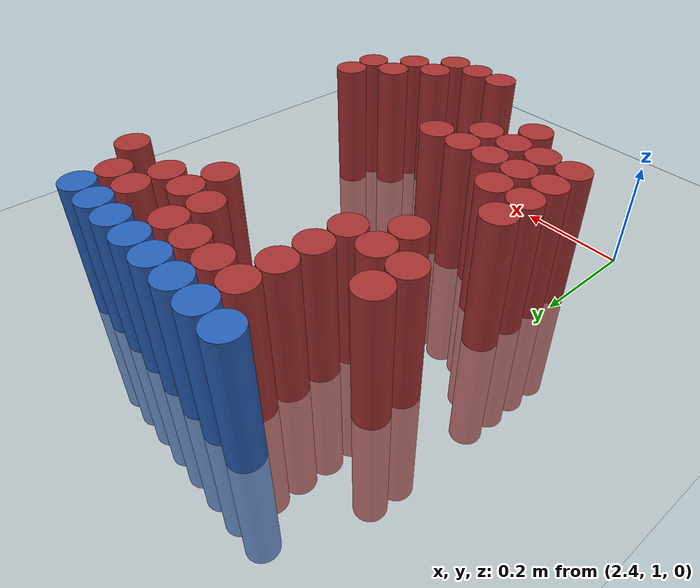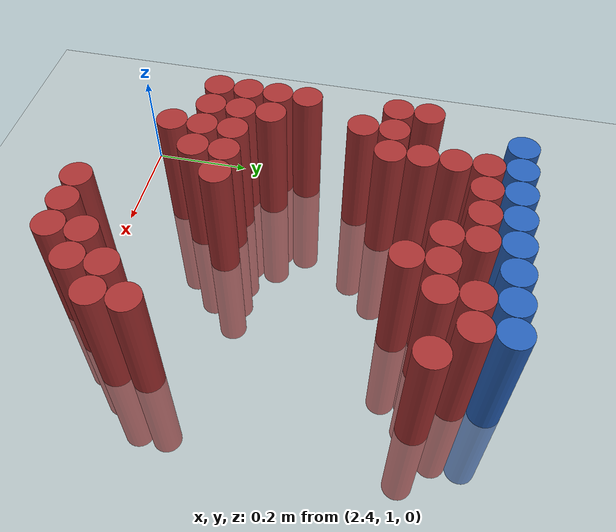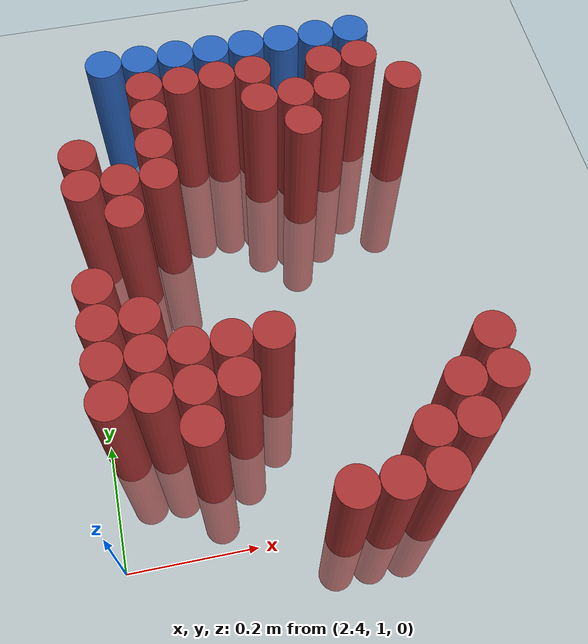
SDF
<sdf version="1.6">
 <world name="default">
  <model name="ground_plane">
   <static>1</static>
   <link name="link">
    <collision name="collision">
     <geometry><plane><normal>0 0 1</normal><size>100 100</size></plane></geometry>
     <surface><friction><ode><mu>100</mu><mu2>50</mu2></ode></friction></surface>
    </collision>
    <visual name="visual">
     <cast_shadows>0</cast_shadows>
     <geometry><plane><normal>0 0 1</normal><size>100 100</size></plane></geometry>
     <material>
      <script><uri>file://media/materials/scripts/gazebo.material</uri><name>Gazebo/Grey</name></script>
     </material>
    </visual>
   </link>
  </model>
  <model name="unit_cylinder_102">
   <static>1</static>
   <pose>2.490000 1.770000 0.000000 0.000000 0.000000 0.000000</pose>
   <link name="link">
    <inertial>
     <mass>1</mass>
     <inertia><ixx>0.145833</ixx><ixy>0</ixy><ixz>0</ixz><iyy>0.145833</iyy><iyz>0</iyz><izz>0.125</izz></inertia>
    </inertial>
    <collision name="collision">
     <geometry><cylinder><radius>0.030000</radius><length>0.5</length></cylinder></geometry>
    </collision>
    <visual name="visual">
     <geometry><cylinder><radius>0.030000</radius><length>0.5</length></cylinder></geometry>
     <material>
      <ambient>0.152000 0.379000 0.720000 1</ambient>
      <diffuse>0.152000 0.379000 0.720000 1</diffuse>
     </material>
     <material>
      <script><name>Gazebo/Grey</name><uri>file://media/materials/scripts/gazebo.material</uri></script>
     </material>
    </visual>
   </link>
  </model>
  <model name="unit_cylinder_103">
   <static>1</static>
   <pose>2.550000 1.770000 0.000000 0.000000 0.000000 0.000000</pose>
   <link name="link">
    <inertial>
     <mass>1</mass>
     <inertia><ixx>0.145833</ixx><ixy>0</ixy><ixz>0</ixz><iyy>0.145833</iyy><iyz>0</iyz><izz>0.125</izz></inertia>
    </inertial>
    <collision name="collision">
     <geometry><cylinder><radius>0.030000</radius><length>0.5</length></cylinder></geometry>
    </collision>
    <visual name="visual">
     <geometry><cylinder><radius>0.030000</radius><length>0.5</length></cylinder></geometry>
     <material>
      <ambient>0.152000 0.379000 0.720000 1</ambient>
      <diffuse>0.152000 0.379000 0.720000 1</diffuse>
     </material>
     <material>
      <script><name>Gazebo/Grey</name><uri>file://media/materials/scripts/gazebo.material</uri></script>
     </material>
    </visual>
   </link>
  </model>
  <model name="unit_cylinder_104">
   <static>1</static>
   <pose>2.610000 1.770000 0.000000 0.000000 0.000000 0.000000</pose>
   <link name="link">
    <inertial>
     <mass>1</mass>
     <inertia><ixx>0.145833</ixx><ixy>0</ixy><ixz>0</ixz><iyy>0.145833</iyy><iyz>0</iyz><izz>0.125</izz></inertia>
    </inertial>
    <collision name="collision">
     <geometry><cylinder><radius>0.030000</radius><length>0.5</length></cylinder></geometry>
    </collision>
    <visual name="visual">
     <geometry><cylinder><radius>0.030000</radius><length>0.5</length></cylinder></geometry>
     <material>
      <ambient>0.152000 0.379000 0.720000 1</ambient>
      <diffuse>0.152000 0.379000 0.720000 1</diffuse>
     </material>
     <material>
      <script><name>Gazebo/Grey</name><uri>file://media/materials/scripts/gazebo.material</uri></script>
     </material>
    </visual>
   </link>
  </model>
  <model name="unit_cylinder_105">
   <static>1</static>
   <pose>2.670000 1.770000 0.000000 0.000000 0.000000 0.000000</pose>
   <link name="link">
    <inertial>
     <mass>1</mass>
     <inertia><ixx>0.145833</ixx><ixy>0</ixy><ixz>0</ixz><iyy>0.145833</iyy><iyz>0</iyz><izz>0.125</izz></inertia>
    </inertial>
    <collision name="collision">
     <geometry><cylinder><radius>0.030000</radius><length>0.5</length></cylinder></geometry>
    </collision>
    <visual name="visual">
     <geometry><cylinder><radius>0.030000</radius><length>0.5</length></cylinder></geometry>
     <material>
      <ambient>0.152000 0.379000 0.720000 1</ambient>
      <diffuse>0.152000 0.379000 0.720000 1</diffuse>
     </material>
     <material>
      <script><name>Gazebo/Grey</name><uri>file://media/materials/scripts/gazebo.material</uri></script>
     </material>
    </visual>
   </link>
  </model>
  <model name="unit_cylinder_106">
   <static>1</static>
   <pose>2.730000 1.770000 0.000000 0.000000 0.000000 0.000000</pose>
   <link name="link">
    <inertial>
     <mass>1</mass>
     <inertia><ixx>0.145833</ixx><ixy>0</ixy><ixz>0</ixz><iyy>0.145833</iyy><iyz>0</iyz><izz>0.125</izz></inertia>
    </inertial>
    <collision name="collision">
     <geometry><cylinder><radius>0.030000</radius><length>0.5</length></cylinder></geometry>
    </collision>
    <visual name="visual">
     <geometry><cylinder><radius>0.030000</radius><length>0.5</length></cylinder></geometry>
     <material>
      <ambient>0.152000 0.379000 0.720000 1</ambient>
      <diffuse>0.152000 0.379000 0.720000 1</diffuse>
     </material>
     <material>
      <script><name>Gazebo/Grey</name><uri>file://media/materials/scripts/gazebo.material</uri></script>
     </material>
    </visual>
   </link>
  </model>
  <model name="unit_cylinder_107">
   <static>1</static>
   <pose>2.790000 1.770000 0.000000 0.000000 0.000000 0.000000</pose>
   <link name="link">
    <inertial>
     <mass>1</mass>
     <inertia><ixx>0.145833</ixx><ixy>0</ixy><ixz>0</ixz><iyy>0.145833</iyy><iyz>0</iyz><izz>0.125</izz></inertia>
    </inertial>
    <collision name="collision">
     <geometry><cylinder><radius>0.030000</radius><length>0.5</length></cylinder></geometry>
    </collision>
    <visual name="visual">
     <geometry><cylinder><radius>0.030000</radius><length>0.5</length></cylinder></geometry>
     <material>
      <ambient>0.152000 0.379000 0.720000 1</ambient>
      <diffuse>0.152000 0.379000 0.720000 1</diffuse>
     </material>
     <material>
      <script><name>Gazebo/Grey</name><uri>file://media/materials/scripts/gazebo.material</uri></script>
     </material>
    </visual>
   </link>
  </model>
  <model name="unit_cylinder_108">
   <static>1</static>
   <pose>2.850000 1.770000 0.000000 0.000000 0.000000 0.000000</pose>
   <link name="link">
    <inertial>
     <mass>1</mass>
     <inertia><ixx>0.145833</ixx><ixy>0</ixy><ixz>0</ixz><iyy>0.145833</iyy><iyz>0</iyz><izz>0.125</izz></inertia>
    </inertial>
    <collision name="collision">
     <geometry><cylinder><radius>0.030000</radius><length>0.5</length></cylinder></geometry>
    </collision>
    <visual name="visual">
     <geometry><cylinder><radius>0.030000</radius><length>0.5</length></cylinder></geometry>
     <material>
      <ambient>0.152000 0.379000 0.720000 1</ambient>
      <diffuse>0.152000 0.379000 0.720000 1</diffuse>
     </material>
     <material>
      <script><name>Gazebo/Grey</name><uri>file://media/materials/scripts/gazebo.material</uri></script>
     </material>
    </visual>
   </link>
  </model>
  <model name="unit_cylinder_109">
   <static>1</static>
   <pose>2.910000 1.770000 0.000000 0.000000 0.000000 0.000000</pose>
   <link name="link">
    <inertial>
     <mass>1</mass>
     <inertia><ixx>0.145833</ixx><ixy>0</ixy><ixz>0</ixz><iyy>0.145833</iyy><iyz>0</iyz><izz>0.125</izz></inertia>
    </inertial>
    <collision name="collision">
     <geometry><cylinder><radius>0.030000</radius><length>0.5</length></cylinder></geometry>
    </collision>
    <visual name="visual">
     <geometry><cylinder><radius>0.030000</radius><length>0.5</length></cylinder></geometry>
     <material>
      <ambient>0.152000 0.379000 0.720000 1</ambient>
      <diffuse>0.152000 0.379000 0.720000 1</diffuse>
     </material>
     <material>
      <script><name>Gazebo/Grey</name><uri>file://media/materials/scripts/gazebo.material</uri></script>
     </material>
    </visual>
   </link>
  </model>
  <model name="unit_cylinder_126">
   <static>1</static>
   <pose>2.550000 1.710000 0.000000 0.000000 0.000000 0.000000</pose>
   <link name="link">
    <inertial>
     <mass>1</mass>
     <inertia><ixx>0.145833</ixx><ixy>0</ixy><ixz>0</ixz><iyy>0.145833</iyy><iyz>0</iyz><izz>0.125</izz></inertia>
    </inertial>
    <collision name="collision">
     <geometry><cylinder><radius>0.030000</radius><length>0.5</length></cylinder></geometry>
    </collision>
    <visual name="visual">
     <geometry><cylinder><radius>0.030000</radius><length>0.5</length></cylinder></geometry>
     <material>
      <ambient>0.648000 0.192000 0.192000 1</ambient>
      <diffuse>0.648000 0.192000 0.192000 1</diffuse>
     </material>
     <material>
      <script><name>Gazebo/Grey</name><uri>file://media/materials/scripts/gazebo.material</uri></script>
     </material>
    </visual>
   </link>
  </model>
  <model name="unit_cylinder_127">
   <static>1</static>
   <pose>2.610000 1.710000 0.000000 0.000000 0.000000 0.000000</pose>
   <link name="link">
    <inertial>
     <mass>1</mass>
     <inertia><ixx>0.145833</ixx><ixy>0</ixy><ixz>0</ixz><iyy>0.145833</iyy><iyz>0</iyz><izz>0.125</izz></inertia>
    </inertial>
    <collision name="collision">
     <geometry><cylinder><radius>0.030000</radius><length>0.5</length></cylinder></geometry>
    </collision>
    <visual name="visual">
     <geometry><cylinder><radius>0.030000</radius><length>0.5</length></cylinder></geometry>
     <material>
      <ambient>0.648000 0.192000 0.192000 1</ambient>
      <diffuse>0.648000 0.192000 0.192000 1</diffuse>
     </material>
     <material>
      <script><name>Gazebo/Grey</name><uri>file://media/materials/scripts/gazebo.material</uri></script>
     </material>
    </visual>
   </link>
  </model>
  <model name="unit_cylinder_128">
   <static>1</static>
   <pose>2.670000 1.710000 0.000000 0.000000 0.000000 0.000000</pose>
   <link name="link">
    <inertial>
     <mass>1</mass>
     <inertia><ixx>0.145833</ixx><ixy>0</ixy><ixz>0</ixz><iyy>0.145833</iyy><iyz>0</iyz><izz>0.125</izz></inertia>
    </inertial>
    <collision name="collision">
     <geometry><cylinder><radius>0.030000</radius><length>0.5</length></cylinder></geometry>
    </collision>
    <visual name="visual">
     <geometry><cylinder><radius>0.030000</radius><length>0.5</length></cylinder></geometry>
     <material>
      <ambient>0.648000 0.192000 0.192000 1</ambient>
      <diffuse>0.648000 0.192000 0.192000 1</diffuse>
     </material>
     <material>
      <script><name>Gazebo/Grey</name><uri>file://media/materials/scripts/gazebo.material</uri></script>
     </material>
    </visual>
   </link>
  </model>
  <model name="unit_cylinder_129">
   <static>1</static>
   <pose>2.730000 1.710000 0.000000 0.000000 0.000000 0.000000</pose>
   <link name="link">
    <inertial>
     <mass>1</mass>
     <inertia><ixx>0.145833</ixx><ixy>0</ixy><ixz>0</ixz><iyy>0.145833</iyy><iyz>0</iyz><izz>0.125</izz></inertia>
    </inertial>
    <collision name="collision">
     <geometry><cylinder><radius>0.030000</radius><length>0.5</length></cylinder></geometry>
    </collision>
    <visual name="visual">
     <geometry><cylinder><radius>0.030000</radius><length>0.5</length></cylinder></geometry>
     <material>
      <ambient>0.648000 0.192000 0.192000 1</ambient>
      <diffuse>0.648000 0.192000 0.192000 1</diffuse>
     </material>
     <material>
      <script><name>Gazebo/Grey</name><uri>file://media/materials/scripts/gazebo.material</uri></script>
     </material>
    </visual>
   </link>
  </model>
  <model name="unit_cylinder_130">
   <static>1</static>
   <pose>2.850000 1.710000 0.000000 0.000000 0.000000 0.000000</pose>
   <link name="link">
    <inertial>
     <mass>1</mass>
     <inertia><ixx>0.145833</ixx><ixy>0</ixy><ixz>0</ixz><iyy>0.145833</iyy><iyz>0</iyz><izz>0.125</izz></inertia>
    </inertial>
    <collision name="collision">
     <geometry><cylinder><radius>0.030000</radius><length>0.5</length></cylinder></geometry>
    </collision>
    <visual name="visual">
     <geometry><cylinder><radius>0.030000</radius><length>0.5</length></cylinder></geometry>
     <material>
      <ambient>0.648000 0.192000 0.192000 1</ambient>
      <diffuse>0.648000 0.192000 0.192000 1</diffuse>
     </material>
     <material>
      <script><name>Gazebo/Grey</name><uri>file://media/materials/scripts/gazebo.material</uri></script>
     </material>
    </visual>
   </link>
  </model>
  <model name="unit_cylinder_131">
   <static>1</static>
   <pose>2.910000 1.710000 0.000000 0.000000 0.000000 0.000000</pose>
   <link name="link">
    <inertial>
     <mass>1</mass>
     <inertia><ixx>0.145833</ixx><ixy>0</ixy><ixz>0</ixz><iyy>0.145833</iyy><iyz>0</iyz><izz>0.125</izz></inertia>
    </inertial>
    <collision name="collision">
     <geometry><cylinder><radius>0.030000</radius><length>0.5</length></cylinder></geometry>
    </collision>
    <visual name="visual">
     <geometry><cylinder><radius>0.030000</radius><length>0.5</length></cylinder></geometry>
     <material>
      <ambient>0.648000 0.192000 0.192000 1</ambient>
      <diffuse>0.648000 0.192000 0.192000 1</diffuse>
     </material>
     <material>
      <script><name>Gazebo/Grey</name><uri>file://media/materials/scripts/gazebo.material</uri></script>
     </material>
    </visual>
   </link>
  </model>
  <model name="unit_cylinder_148">
   <static>1</static>
   <pose>2.550000 1.650000 0.000000 0.000000 0.000000 0.000000</pose>
   <link name="link">
    <inertial>
     <mass>1</mass>
     <inertia><ixx>0.145833</ixx><ixy>0</ixy><ixz>0</ixz><iyy>0.145833</iyy><iyz>0</iyz><izz>0.125</izz></inertia>
    </inertial>
    <collision name="collision">
     <geometry><cylinder><radius>0.030000</radius><length>0.5</length></cylinder></geometry>
    </collision>
    <visual name="visual">
     <geometry><cylinder><radius>0.030000</radius><length>0.5</length></cylinder></geometry>
     <material>
      <ambient>0.648000 0.192000 0.192000 1</ambient>
      <diffuse>0.648000 0.192000 0.192000 1</diffuse>
     </material>
     <material>
      <script><name>Gazebo/Grey</name><uri>file://media/materials/scripts/gazebo.material</uri></script>
     </material>
    </visual>
   </link>
  </model>
  <model name="unit_cylinder_149">
   <static>1</static>
   <pose>2.730000 1.650000 0.000000 0.000000 0.000000 0.000000</pose>
   <link name="link">
    <inertial>
     <mass>1</mass>
     <inertia><ixx>0.145833</ixx><ixy>0</ixy><ixz>0</ixz><iyy>0.145833</iyy><iyz>0</iyz><izz>0.125</izz></inertia>
    </inertial>
    <collision name="collision">
     <geometry><cylinder><radius>0.030000</radius><length>0.5</length></cylinder></geometry>
    </collision>
    <visual name="visual">
     <geometry><cylinder><radius>0.030000</radius><length>0.5</length></cylinder></geometry>
     <material>
      <ambient>0.648000 0.192000 0.192000 1</ambient>
      <diffuse>0.648000 0.192000 0.192000 1</diffuse>
     </material>
     <material>
      <script><name>Gazebo/Grey</name><uri>file://media/materials/scripts/gazebo.material</uri></script>
     </material>
    </visual>
   </link>
  </model>
  <model name="unit_cylinder_150">
   <static>1</static>
   <pose>2.790000 1.650000 0.000000 0.000000 0.000000 0.000000</pose>
   <link name="link">
    <inertial>
     <mass>1</mass>
     <inertia><ixx>0.145833</ixx><ixy>0</ixy><ixz>0</ixz><iyy>0.145833</iyy><iyz>0</iyz><izz>0.125</izz></inertia>
    </inertial>
    <collision name="collision">
     <geometry><cylinder><radius>0.030000</radius><length>0.5</length></cylinder></geometry>
    </collision>
    <visual name="visual">
     <geometry><cylinder><radius>0.030000</radius><length>0.5</length></cylinder></geometry>
     <material>
      <ambient>0.648000 0.192000 0.192000 1</ambient>
      <diffuse>0.648000 0.192000 0.192000 1</diffuse>
     </material>
     <material>
      <script><name>Gazebo/Grey</name><uri>file://media/materials/scripts/gazebo.material</uri></script>
     </material>
    </visual>
   </link>
  </model>
  <model name="unit_cylinder_151">
   <static>1</static>
   <pose>2.850000 1.650000 0.000000 0.000000 0.000000 0.000000</pose>
   <link name="link">
    <inertial>
     <mass>1</mass>
     <inertia><ixx>0.145833</ixx><ixy>0</ixy><ixz>0</ixz><iyy>0.145833</iyy><iyz>0</iyz><izz>0.125</izz></inertia>
    </inertial>
    <collision name="collision">
     <geometry><cylinder><radius>0.030000</radius><length>0.5</length></cylinder></geometry>
    </collision>
    <visual name="visual">
     <geometry><cylinder><radius>0.030000</radius><length>0.5</length></cylinder></geometry>
     <material>
      <ambient>0.648000 0.192000 0.192000 1</ambient>
      <diffuse>0.648000 0.192000 0.192000 1</diffuse>
     </material>
     <material>
      <script><name>Gazebo/Grey</name><uri>file://media/materials/scripts/gazebo.material</uri></script>
     </material>
    </visual>
   </link>
  </model>
  <model name="unit_cylinder_152">
   <static>1</static>
   <pose>2.970000 1.650000 0.000000 0.000000 0.000000 0.000000</pose>
   <link name="link">
    <inertial>
     <mass>1</mass>
     <inertia><ixx>0.145833</ixx><ixy>0</ixy><ixz>0</ixz><iyy>0.145833</iyy><iyz>0</iyz><izz>0.125</izz></inertia>
    </inertial>
    <collision name="collision">
     <geometry><cylinder><radius>0.030000</radius><length>0.5</length></cylinder></geometry>
    </collision>
    <visual name="visual">
     <geometry><cylinder><radius>0.030000</radius><length>0.5</length></cylinder></geometry>
     <material>
      <ambient>0.648000 0.192000 0.192000 1</ambient>
      <diffuse>0.648000 0.192000 0.192000 1</diffuse>
     </material>
     <material>
      <script><name>Gazebo/Grey</name><uri>file://media/materials/scripts/gazebo.material</uri></script>
     </material>
    </visual>
   </link>
  </model>
  <model name="unit_cylinder_159">
   <static>1</static>
   <pose>2.430000 1.590000 0.000000 0.000000 0.000000 0.000000</pose>
   <link name="link">
    <inertial>
     <mass>1</mass>
     <inertia><ixx>0.145833</ixx><ixy>0</ixy><ixz>0</ixz><iyy>0.145833</iyy><iyz>0</iyz><izz>0.125</izz></inertia>
    </inertial>
    <collision name="collision">
     <geometry><cylinder><radius>0.030000</radius><length>0.5</length></cylinder></geometry>
    </collision>
    <visual name="visual">
     <geometry><cylinder><radius>0.030000</radius><length>0.5</length></cylinder></geometry>
     <material>
      <ambient>0.648000 0.192000 0.192000 1</ambient>
      <diffuse>0.648000 0.192000 0.192000 1</diffuse>
     </material>
     <material>
      <script><name>Gazebo/Grey</name><uri>file://media/materials/scripts/gazebo.material</uri></script>
     </material>
    </visual>
   </link>
  </model>
  <model name="unit_cylinder_160">
   <static>1</static>
   <pose>2.550000 1.590000 0.000000 0.000000 0.000000 0.000000</pose>
   <link name="link">
    <inertial>
     <mass>1</mass>
     <inertia><ixx>0.145833</ixx><ixy>0</ixy><ixz>0</ixz><iyy>0.145833</iyy><iyz>0</iyz><izz>0.125</izz></inertia>
    </inertial>
    <collision name="collision">
     <geometry><cylinder><radius>0.030000</radius><length>0.5</length></cylinder></geometry>
    </collision>
    <visual name="visual">
     <geometry><cylinder><radius>0.030000</radius><length>0.5</length></cylinder></geometry>
     <material>
      <ambient>0.648000 0.192000 0.192000 1</ambient>
      <diffuse>0.648000 0.192000 0.192000 1</diffuse>
     </material>
     <material>
      <script><name>Gazebo/Grey</name><uri>file://media/materials/scripts/gazebo.material</uri></script>
     </material>
    </visual>
   </link>
  </model>
  <model name="unit_cylinder_161">
   <static>1</static>
   <pose>2.790000 1.590000 0.000000 0.000000 0.000000 0.000000</pose>
   <link name="link">
    <inertial>
     <mass>1</mass>
     <inertia><ixx>0.145833</ixx><ixy>0</ixy><ixz>0</ixz><iyy>0.145833</iyy><iyz>0</iyz><izz>0.125</izz></inertia>
    </inertial>
    <collision name="collision">
     <geometry><cylinder><radius>0.030000</radius><length>0.5</length></cylinder></geometry>
    </collision>
    <visual name="visual">
     <geometry><cylinder><radius>0.030000</radius><length>0.5</length></cylinder></geometry>
     <material>
      <ambient>0.648000 0.192000 0.192000 1</ambient>
      <diffuse>0.648000 0.192000 0.192000 1</diffuse>
     </material>
     <material>
      <script><name>Gazebo/Grey</name><uri>file://media/materials/scripts/gazebo.material</uri></script>
     </material>
    </visual>
   </link>
  </model>
  <model name="unit_cylinder_167">
   <static>1</static>
   <pose>2.430000 1.530000 0.000000 0.000000 0.000000 0.000000</pose>
   <link name="link">
    <inertial>
     <mass>1</mass>
     <inertia><ixx>0.145833</ixx><ixy>0</ixy><ixz>0</ixz><iyy>0.145833</iyy><iyz>0</iyz><izz>0.125</izz></inertia>
    </inertial>
    <collision name="collision">
     <geometry><cylinder><radius>0.030000</radius><length>0.5</length></cylinder></geometry>
    </collision>
    <visual name="visual">
     <geometry><cylinder><radius>0.030000</radius><length>0.5</length></cylinder></geometry>
     <material>
      <ambient>0.648000 0.192000 0.192000 1</ambient>
      <diffuse>0.648000 0.192000 0.192000 1</diffuse>
     </material>
     <material>
      <script><name>Gazebo/Grey</name><uri>file://media/materials/scripts/gazebo.material</uri></script>
     </material>
    </visual>
   </link>
  </model>
  <model name="unit_cylinder_168">
   <static>1</static>
   <pose>2.490000 1.530000 0.000000 0.000000 0.000000 0.000000</pose>
   <link name="link">
    <inertial>
     <mass>1</mass>
     <inertia><ixx>0.145833</ixx><ixy>0</ixy><ixz>0</ixz><iyy>0.145833</iyy><iyz>0</iyz><izz>0.125</izz></inertia>
    </inertial>
    <collision name="collision">
     <geometry><cylinder><radius>0.030000</radius><length>0.5</length></cylinder></geometry>
    </collision>
    <visual name="visual">
     <geometry><cylinder><radius>0.030000</radius><length>0.5</length></cylinder></geometry>
     <material>
      <ambient>0.648000 0.192000 0.192000 1</ambient>
      <diffuse>0.648000 0.192000 0.192000 1</diffuse>
     </material>
     <material>
      <script><name>Gazebo/Grey</name><uri>file://media/materials/scripts/gazebo.material</uri></script>
     </material>
    </visual>
   </link>
  </model>
  <model name="unit_cylinder_169">
   <static>1</static>
   <pose>2.550000 1.530000 0.000000 0.000000 0.000000 0.000000</pose>
   <link name="link">
    <inertial>
     <mass>1</mass>
     <inertia><ixx>0.145833</ixx><ixy>0</ixy><ixz>0</ixz><iyy>0.145833</iyy><iyz>0</iyz><izz>0.125</izz></inertia>
    </inertial>
    <collision name="collision">
     <geometry><cylinder><radius>0.030000</radius><length>0.5</length></cylinder></geometry>
    </collision>
    <visual name="visual">
     <geometry><cylinder><radius>0.030000</radius><length>0.5</length></cylinder></geometry>
     <material>
      <ambient>0.648000 0.192000 0.192000 1</ambient>
      <diffuse>0.648000 0.192000 0.192000 1</diffuse>
     </material>
     <material>
      <script><name>Gazebo/Grey</name><uri>file://media/materials/scripts/gazebo.material</uri></script>
     </material>
    </visual>
   </link>
  </model>
  <model name="unit_cylinder_176">
   <static>1</static>
   <pose>2.490000 1.470000 0.000000 0.000000 0.000000 0.000000</pose>
   <link name="link">
    <inertial>
     <mass>1</mass>
     <inertia><ixx>0.145833</ixx><ixy>0</ixy><ixz>0</ixz><iyy>0.145833</iyy><iyz>0</iyz><izz>0.125</izz></inertia>
    </inertial>
    <collision name="collision">
     <geometry><cylinder><radius>0.030000</radius><length>0.5</length></cylinder></geometry>
    </collision>
    <visual name="visual">
     <geometry><cylinder><radius>0.030000</radius><length>0.5</length></cylinder></geometry>
     <material>
      <ambient>0.648000 0.192000 0.192000 1</ambient>
      <diffuse>0.648000 0.192000 0.192000 1</diffuse>
     </material>
     <material>
      <script><name>Gazebo/Grey</name><uri>file://media/materials/scripts/gazebo.material</uri></script>
     </material>
    </visual>
   </link>
  </model>
  <model name="unit_cylinder_183">
   <static>1</static>
   <pose>2.430000 1.350000 0.000000 0.000000 0.000000 0.000000</pose>
   <link name="link">
    <inertial>
     <mass>1</mass>
     <inertia><ixx>0.145833</ixx><ixy>0</ixy><ixz>0</ixz><iyy>0.145833</iyy><iyz>0</iyz><izz>0.125</izz></inertia>
    </inertial>
    <collision name="collision">
     <geometry><cylinder><radius>0.030000</radius><length>0.5</length></cylinder></geometry>
    </collision>
    <visual name="visual">
     <geometry><cylinder><radius>0.030000</radius><length>0.5</length></cylinder></geometry>
     <material>
      <ambient>0.648000 0.192000 0.192000 1</ambient>
      <diffuse>0.648000 0.192000 0.192000 1</diffuse>
     </material>
     <material>
      <script><name>Gazebo/Grey</name><uri>file://media/materials/scripts/gazebo.material</uri></script>
     </material>
    </visual>
   </link>
  </model>
  <model name="unit_cylinder_188">
   <static>1</static>
   <pose>2.430000 1.290000 0.000000 0.000000 0.000000 0.000000</pose>
   <link name="link">
    <inertial>
     <mass>1</mass>
     <inertia><ixx>0.145833</ixx><ixy>0</ixy><ixz>0</ixz><iyy>0.145833</iyy><iyz>0</iyz><izz>0.125</izz></inertia>
    </inertial>
    <collision name="collision">
     <geometry><cylinder><radius>0.030000</radius><length>0.5</length></cylinder></geometry>
    </collision>
    <visual name="visual">
     <geometry><cylinder><radius>0.030000</radius><length>0.5</length></cylinder></geometry>
     <material>
      <ambient>0.648000 0.192000 0.192000 1</ambient>
      <diffuse>0.648000 0.192000 0.192000 1</diffuse>
     </material>
     <material>
      <script><name>Gazebo/Grey</name><uri>file://media/materials/scripts/gazebo.material</uri></script>
     </material>
    </visual>
   </link>
  </model>
  <model name="unit_cylinder_189">
   <static>1</static>
   <pose>2.490000 1.290000 0.000000 0.000000 0.000000 0.000000</pose>
   <link name="link">
    <inertial>
     <mass>1</mass>
     <inertia><ixx>0.145833</ixx><ixy>0</ixy><ixz>0</ixz><iyy>0.145833</iyy><iyz>0</iyz><izz>0.125</izz></inertia>
    </inertial>
    <collision name="collision">
     <geometry><cylinder><radius>0.030000</radius><length>0.5</length></cylinder></geometry>
    </collision>
    <visual name="visual">
     <geometry><cylinder><radius>0.030000</radius><length>0.5</length></cylinder></geometry>
     <material>
      <ambient>0.648000 0.192000 0.192000 1</ambient>
      <diffuse>0.648000 0.192000 0.192000 1</diffuse>
     </material>
     <material>
      <script><name>Gazebo/Grey</name><uri>file://media/materials/scripts/gazebo.material</uri></script>
     </material>
    </visual>
   </link>
  </model>
  <model name="unit_cylinder_194">
   <static>1</static>
   <pose>2.430000 1.230000 0.000000 0.000000 0.000000 0.000000</pose>
   <link name="link">
    <inertial>
     <mass>1</mass>
     <inertia><ixx>0.145833</ixx><ixy>0</ixy><ixz>0</ixz><iyy>0.145833</iyy><iyz>0</iyz><izz>0.125</izz></inertia>
    </inertial>
    <collision name="collision">
     <geometry><cylinder><radius>0.030000</radius><length>0.5</length></cylinder></geometry>
    </collision>
    <visual name="visual">
     <geometry><cylinder><radius>0.030000</radius><length>0.5</length></cylinder></geometry>
     <material>
      <ambient>0.648000 0.192000 0.192000 1</ambient>
      <diffuse>0.648000 0.192000 0.192000 1</diffuse>
     </material>
     <material>
      <script><name>Gazebo/Grey</name><uri>file://media/materials/scripts/gazebo.material</uri></script>
     </material>
    </visual>
   </link>
  </model>
  <model name="unit_cylinder_195">
   <static>1</static>
   <pose>2.490000 1.230000 0.000000 0.000000 0.000000 0.000000</pose>
   <link name="link">
    <inertial>
     <mass>1</mass>
     <inertia><ixx>0.145833</ixx><ixy>0</ixy><ixz>0</ixz><iyy>0.145833</iyy><iyz>0</iyz><izz>0.125</izz></inertia>
    </inertial>
    <collision name="collision">
     <geometry><cylinder><radius>0.030000</radius><length>0.5</length></cylinder></geometry>
    </collision>
    <visual name="visual">
     <geometry><cylinder><radius>0.030000</radius><length>0.5</length></cylinder></geometry>
     <material>
      <ambient>0.648000 0.192000 0.192000 1</ambient>
      <diffuse>0.648000 0.192000 0.192000 1</diffuse>
     </material>
     <material>
      <script><name>Gazebo/Grey</name><uri>file://media/materials/scripts/gazebo.material</uri></script>
     </material>
    </visual>
   </link>
  </model>
  <model name="unit_cylinder_196">
   <static>1</static>
   <pose>2.550000 1.230000 0.000000 0.000000 0.000000 0.000000</pose>
   <link name="link">
    <inertial>
     <mass>1</mass>
     <inertia><ixx>0.145833</ixx><ixy>0</ixy><ixz>0</ixz><iyy>0.145833</iyy><iyz>0</iyz><izz>0.125</izz></inertia>
    </inertial>
    <collision name="collision">
     <geometry><cylinder><radius>0.030000</radius><length>0.5</length></cylinder></geometry>
    </collision>
    <visual name="visual">
     <geometry><cylinder><radius>0.030000</radius><length>0.5</length></cylinder></geometry>
     <material>
      <ambient>0.648000 0.192000 0.192000 1</ambient>
      <diffuse>0.648000 0.192000 0.192000 1</diffuse>
     </material>
     <material>
      <script><name>Gazebo/Grey</name><uri>file://media/materials/scripts/gazebo.material</uri></script>
     </material>
    </visual>
   </link>
  </model>
  <model name="unit_cylinder_197">
   <static>1</static>
   <pose>2.610000 1.230000 0.000000 0.000000 0.000000 0.000000</pose>
   <link name="link">
    <inertial>
     <mass>1</mass>
     <inertia><ixx>0.145833</ixx><ixy>0</ixy><ixz>0</ixz><iyy>0.145833</iyy><iyz>0</iyz><izz>0.125</izz></inertia>
    </inertial>
    <collision name="collision">
     <geometry><cylinder><radius>0.030000</radius><length>0.5</length></cylinder></geometry>
    </collision>
    <visual name="visual">
     <geometry><cylinder><radius>0.030000</radius><length>0.5</length></cylinder></geometry>
     <material>
      <ambient>0.648000 0.192000 0.192000 1</ambient>
      <diffuse>0.648000 0.192000 0.192000 1</diffuse>
     </material>
     <material>
      <script><name>Gazebo/Grey</name><uri>file://media/materials/scripts/gazebo.material</uri></script>
     </material>
    </visual>
   </link>
  </model>
  <model name="unit_cylinder_198">
   <static>1</static>
   <pose>2.670000 1.230000 0.000000 0.000000 0.000000 0.000000</pose>
   <link name="link">
    <inertial>
     <mass>1</mass>
     <inertia><ixx>0.145833</ixx><ixy>0</ixy><ixz>0</ixz><iyy>0.145833</iyy><iyz>0</iyz><izz>0.125</izz></inertia>
    </inertial>
    <collision name="collision">
     <geometry><cylinder><radius>0.030000</radius><length>0.5</length></cylinder></geometry>
    </collision>
    <visual name="visual">
     <geometry><cylinder><radius>0.030000</radius><length>0.5</length></cylinder></geometry>
     <material>
      <ambient>0.648000 0.192000 0.192000 1</ambient>
      <diffuse>0.648000 0.192000 0.192000 1</diffuse>
     </material>
     <material>
      <script><name>Gazebo/Grey</name><uri>file://media/materials/scripts/gazebo.material</uri></script>
     </material>
    </visual>
   </link>
  </model>
  <model name="unit_cylinder_201">
   <static>1</static>
   <pose>2.430000 1.170000 0.000000 0.000000 0.000000 0.000000</pose>
   <link name="link">
    <inertial>
     <mass>1</mass>
     <inertia><ixx>0.145833</ixx><ixy>0</ixy><ixz>0</ixz><iyy>0.145833</iyy><iyz>0</iyz><izz>0.125</izz></inertia>
    </inertial>
    <collision name="collision">
     <geometry><cylinder><radius>0.030000</radius><length>0.5</length></cylinder></geometry>
    </collision>
    <visual name="visual">
     <geometry><cylinder><radius>0.030000</radius><length>0.5</length></cylinder></geometry>
     <material>
      <ambient>0.648000 0.192000 0.192000 1</ambient>
      <diffuse>0.648000 0.192000 0.192000 1</diffuse>
     </material>
     <material>
      <script><name>Gazebo/Grey</name><uri>file://media/materials/scripts/gazebo.material</uri></script>
     </material>
    </visual>
   </link>
  </model>
  <model name="unit_cylinder_202">
   <static>1</static>
   <pose>2.490000 1.170000 0.000000 0.000000 0.000000 0.000000</pose>
   <link name="link">
    <inertial>
     <mass>1</mass>
     <inertia><ixx>0.145833</ixx><ixy>0</ixy><ixz>0</ixz><iyy>0.145833</iyy><iyz>0</iyz><izz>0.125</izz></inertia>
    </inertial>
    <collision name="collision">
     <geometry><cylinder><radius>0.030000</radius><length>0.5</length></cylinder></geometry>
    </collision>
    <visual name="visual">
     <geometry><cylinder><radius>0.030000</radius><length>0.5</length></cylinder></geometry>
     <material>
      <ambient>0.648000 0.192000 0.192000 1</ambient>
      <diffuse>0.648000 0.192000 0.192000 1</diffuse>
     </material>
     <material>
      <script><name>Gazebo/Grey</name><uri>file://media/materials/scripts/gazebo.material</uri></script>
     </material>
    </visual>
   </link>
  </model>
  <model name="unit_cylinder_203">
   <static>1</static>
   <pose>2.550000 1.170000 0.000000 0.000000 0.000000 0.000000</pose>
   <link name="link">
    <inertial>
     <mass>1</mass>
     <inertia><ixx>0.145833</ixx><ixy>0</ixy><ixz>0</ixz><iyy>0.145833</iyy><iyz>0</iyz><izz>0.125</izz></inertia>
    </inertial>
    <collision name="collision">
     <geometry><cylinder><radius>0.030000</radius><length>0.5</length></cylinder></geometry>
    </collision>
    <visual name="visual">
     <geometry><cylinder><radius>0.030000</radius><length>0.5</length></cylinder></geometry>
     <material>
      <ambient>0.648000 0.192000 0.192000 1</ambient>
      <diffuse>0.648000 0.192000 0.192000 1</diffuse>
     </material>
     <material>
      <script><name>Gazebo/Grey</name><uri>file://media/materials/scripts/gazebo.material</uri></script>
     </material>
    </visual>
   </link>
  </model>
  <model name="unit_cylinder_204">
   <static>1</static>
   <pose>2.610000 1.170000 0.000000 0.000000 0.000000 0.000000</pose>
   <link name="link">
    <inertial>
     <mass>1</mass>
     <inertia><ixx>0.145833</ixx><ixy>0</ixy><ixz>0</ixz><iyy>0.145833</iyy><iyz>0</iyz><izz>0.125</izz></inertia>
    </inertial>
    <collision name="collision">
     <geometry><cylinder><radius>0.030000</radius><length>0.5</length></cylinder></geometry>
    </collision>
    <visual name="visual">
     <geometry><cylinder><radius>0.030000</radius><length>0.5</length></cylinder></geometry>
     <material>
      <ambient>0.648000 0.192000 0.192000 1</ambient>
      <diffuse>0.648000 0.192000 0.192000 1</diffuse>
     </material>
     <material>
      <script><name>Gazebo/Grey</name><uri>file://media/materials/scripts/gazebo.material</uri></script>
     </material>
    </visual>
   </link>
  </model>
  <model name="unit_cylinder_205">
   <static>1</static>
   <pose>2.970000 1.170000 0.000000 0.000000 0.000000 0.000000</pose>
   <link name="link">
    <inertial>
     <mass>1</mass>
     <inertia><ixx>0.145833</ixx><ixy>0</ixy><ixz>0</ixz><iyy>0.145833</iyy><iyz>0</iyz><izz>0.125</izz></inertia>
    </inertial>
    <collision name="collision">
     <geometry><cylinder><radius>0.030000</radius><length>0.5</length></cylinder></geometry>
    </collision>
    <visual name="visual">
     <geometry><cylinder><radius>0.030000</radius><length>0.5</length></cylinder></geometry>
     <material>
      <ambient>0.648000 0.192000 0.192000 1</ambient>
      <diffuse>0.648000 0.192000 0.192000 1</diffuse>
     </material>
     <material>
      <script><name>Gazebo/Grey</name><uri>file://media/materials/scripts/gazebo.material</uri></script>
     </material>
    </visual>
   </link>
  </model>
  <model name="unit_cylinder_206">
   <static>1</static>
   <pose>2.550000 1.110000 0.000000 0.000000 0.000000 0.000000</pose>
   <link name="link">
    <inertial>
     <mass>1</mass>
     <inertia><ixx>0.145833</ixx><ixy>0</ixy><ixz>0</ixz><iyy>0.145833</iyy><iyz>0</iyz><izz>0.125</izz></inertia>
    </inertial>
    <collision name="collision">
     <geometry><cylinder><radius>0.030000</radius><length>0.5</length></cylinder></geometry>
    </collision>
    <visual name="visual">
     <geometry><cylinder><radius>0.030000</radius><length>0.5</length></cylinder></geometry>
     <material>
      <ambient>0.648000 0.192000 0.192000 1</ambient>
      <diffuse>0.648000 0.192000 0.192000 1</diffuse>
     </material>
     <material>
      <script><name>Gazebo/Grey</name><uri>file://media/materials/scripts/gazebo.material</uri></script>
     </material>
    </visual>
   </link>
  </model>
  <model name="unit_cylinder_207">
   <static>1</static>
   <pose>2.910000 1.110000 0.000000 0.000000 0.000000 0.000000</pose>
   <link name="link">
    <inertial>
     <mass>1</mass>
     <inertia><ixx>0.145833</ixx><ixy>0</ixy><ixz>0</ixz><iyy>0.145833</iyy><iyz>0</iyz><izz>0.125</izz></inertia>
    </inertial>
    <collision name="collision">
     <geometry><cylinder><radius>0.030000</radius><length>0.5</length></cylinder></geometry>
    </collision>
    <visual name="visual">
     <geometry><cylinder><radius>0.030000</radius><length>0.5</length></cylinder></geometry>
     <material>
      <ambient>0.648000 0.192000 0.192000 1</ambient>
      <diffuse>0.648000 0.192000 0.192000 1</diffuse>
     </material>
     <material>
      <script><name>Gazebo/Grey</name><uri>file://media/materials/scripts/gazebo.material</uri></script>
     </material>
    </visual>
   </link>
  </model>
  <model name="unit_cylinder_208">
   <static>1</static>
   <pose>2.970000 1.110000 0.000000 0.000000 0.000000 0.000000</pose>
   <link name="link">
    <inertial>
     <mass>1</mass>
     <inertia><ixx>0.145833</ixx><ixy>0</ixy><ixz>0</ixz><iyy>0.145833</iyy><iyz>0</iyz><izz>0.125</izz></inertia>
    </inertial>
    <collision name="collision">
     <geometry><cylinder><radius>0.030000</radius><length>0.5</length></cylinder></geometry>
    </collision>
    <visual name="visual">
     <geometry><cylinder><radius>0.030000</radius><length>0.5</length></cylinder></geometry>
     <material>
      <ambient>0.648000 0.192000 0.192000 1</ambient>
      <diffuse>0.648000 0.192000 0.192000 1</diffuse>
     </material>
     <material>
      <script><name>Gazebo/Grey</name><uri>file://media/materials/scripts/gazebo.material</uri></script>
     </material>
    </visual>
   </link>
  </model>
  <model name="unit_cylinder_209">
   <static>1</static>
   <pose>2.850000 1.050000 0.000000 0.000000 0.000000 0.000000</pose>
   <link name="link">
    <inertial>
     <mass>1</mass>
     <inertia><ixx>0.145833</ixx><ixy>0</ixy><ixz>0</ixz><iyy>0.145833</iyy><iyz>0</iyz><izz>0.125</izz></inertia>
    </inertial>
    <collision name="collision">
     <geometry><cylinder><radius>0.030000</radius><length>0.5</length></cylinder></geometry>
    </collision>
    <visual name="visual">
     <geometry><cylinder><radius>0.030000</radius><length>0.5</length></cylinder></geometry>
     <material>
      <ambient>0.648000 0.192000 0.192000 1</ambient>
      <diffuse>0.648000 0.192000 0.192000 1</diffuse>
     </material>
     <material>
      <script><name>Gazebo/Grey</name><uri>file://media/materials/scripts/gazebo.material</uri></script>
     </material>
    </visual>
   </link>
  </model>
  <model name="unit_cylinder_210">
   <static>1</static>
   <pose>2.910000 1.050000 0.000000 0.000000 0.000000 0.000000</pose>
   <link name="link">
    <inertial>
     <mass>1</mass>
     <inertia><ixx>0.145833</ixx><ixy>0</ixy><ixz>0</ixz><iyy>0.145833</iyy><iyz>0</iyz><izz>0.125</izz></inertia>
    </inertial>
    <collision name="collision">
     <geometry><cylinder><radius>0.030000</radius><length>0.5</length></cylinder></geometry>
    </collision>
    <visual name="visual">
     <geometry><cylinder><radius>0.030000</radius><length>0.5</length></cylinder></geometry>
     <material>
      <ambient>0.648000 0.192000 0.192000 1</ambient>
      <diffuse>0.648000 0.192000 0.192000 1</diffuse>
     </material>
     <material>
      <script><name>Gazebo/Grey</name><uri>file://media/materials/scripts/gazebo.material</uri></script>
     </material>
    </visual>
   </link>
  </model>
  <model name="unit_cylinder_212">
   <static>1</static>
   <pose>2.730000 0.990000 0.000000 0.000000 0.000000 0.000000</pose>
   <link name="link">
    <inertial>
     <mass>1</mass>
     <inertia><ixx>0.145833</ixx><ixy>0</ixy><ixz>0</ixz><iyy>0.145833</iyy><iyz>0</iyz><izz>0.125</izz></inertia>
    </inertial>
    <collision name="collision">
     <geometry><cylinder><radius>0.030000</radius><length>0.5</length></cylinder></geometry>
    </collision>
    <visual name="visual">
     <geometry><cylinder><radius>0.030000</radius><length>0.5</length></cylinder></geometry>
     <material>
      <ambient>0.648000 0.192000 0.192000 1</ambient>
      <diffuse>0.648000 0.192000 0.192000 1</diffuse>
     </material>
     <material>
      <script><name>Gazebo/Grey</name><uri>file://media/materials/scripts/gazebo.material</uri></script>
     </material>
    </visual>
   </link>
  </model>
  <model name="unit_cylinder_213">
   <static>1</static>
   <pose>2.790000 0.990000 0.000000 0.000000 0.000000 0.000000</pose>
   <link name="link">
    <inertial>
     <mass>1</mass>
     <inertia><ixx>0.145833</ixx><ixy>0</ixy><ixz>0</ixz><iyy>0.145833</iyy><iyz>0</iyz><izz>0.125</izz></inertia>
    </inertial>
    <collision name="collision">
     <geometry><cylinder><radius>0.030000</radius><length>0.5</length></cylinder></geometry>
    </collision>
    <visual name="visual">
     <geometry><cylinder><radius>0.030000</radius><length>0.5</length></cylinder></geometry>
     <material>
      <ambient>0.648000 0.192000 0.192000 1</ambient>
      <diffuse>0.648000 0.192000 0.192000 1</diffuse>
     </material>
     <material>
      <script><name>Gazebo/Grey</name><uri>file://media/materials/scripts/gazebo.material</uri></script>
     </material>
    </visual>
   </link>
  </model>
  <model name="unit_cylinder_214">
   <static>1</static>
   <pose>2.850000 0.990000 0.000000 0.000000 0.000000 0.000000</pose>
   <link name="link">
    <inertial>
     <mass>1</mass>
     <inertia><ixx>0.145833</ixx><ixy>0</ixy><ixz>0</ixz><iyy>0.145833</iyy><iyz>0</iyz><izz>0.125</izz></inertia>
    </inertial>
    <collision name="collision">
     <geometry><cylinder><radius>0.030000</radius><length>0.5</length></cylinder></geometry>
    </collision>
    <visual name="visual">
     <geometry><cylinder><radius>0.030000</radius><length>0.5</length></cylinder></geometry>
     <material>
      <ambient>0.648000 0.192000 0.192000 1</ambient>
      <diffuse>0.648000 0.192000 0.192000 1</diffuse>
     </material>
     <material>
      <script><name>Gazebo/Grey</name><uri>file://media/materials/scripts/gazebo.material</uri></script>
     </material>
    </visual>
   </link>
  </model>
 </world>
</sdf>
